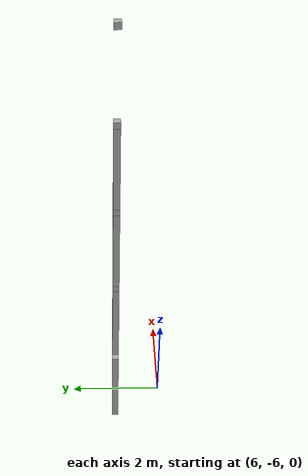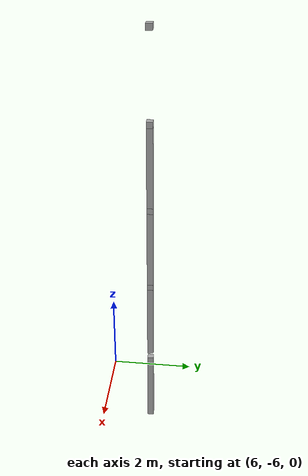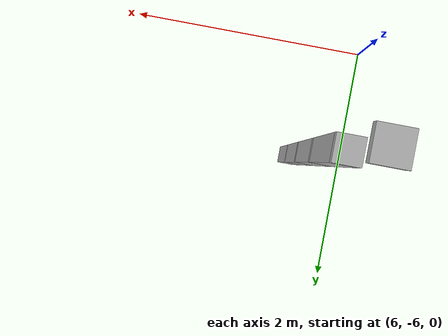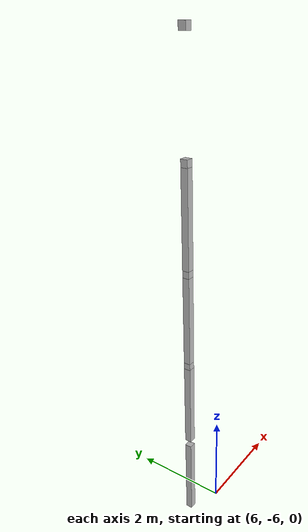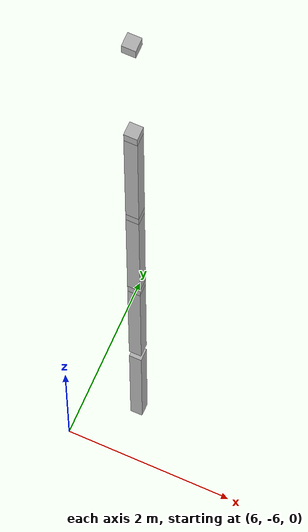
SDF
<sdf version="1.7">
 <world name="default">
  <model name="orthogonal_747_2.000.15_TS">
   <static>1</static>
   <link name="z_link_1_0_6">
    <inertial>
     <mass>1</mass>
     <inertia>
      <ixx>0.166667</ixx>
      <ixy>0</ixy>
      <ixz>0</ixz>
      <iyy>0.166667</iyy>
      <iyz>0</iyz>
      <izz>0.166667</izz>
     </inertia>
    </inertial>
    <pose>12.9 0 2.15 0 -0 0</pose>
    <visual name="visual_0">
     <laser_retro>939</laser_retro>
     <geometry><box><size>0.15 1e-06 2</size></box></geometry>
     <material>
      <script><name>Gazebo/Grey</name><uri>file://media/materials/scripts/gazebo.material</uri></script>
      <shader type="pixel"><normal_map>__default__</normal_map></shader>
      <ambient>0.678 0.498 0.659 1</ambient>
      <diffuse>0.7 0.7 0.7 1</diffuse>
      <specular>0.01 0.01 0.01 1</specular>
      <emissive>0 0 0 1</emissive>
     </material>
     <pose>0 -0.075 0 0 -0 0</pose>
     <transparency>1</transparency>
    </visual>
    <visual name="visual_1">
     <laser_retro>940</laser_retro>
     <geometry><box><size>0.15 1e-06 2</size></box></geometry>
     <material>
      <script><name>Gazebo/Grey</name><uri>file://media/materials/scripts/gazebo.material</uri></script>
      <shader type="pixel"><normal_map>__default__</normal_map></shader>
      <ambient>0.447 0.624 0.812 1</ambient>
      <diffuse>0.7 0.7 0.7 1</diffuse>
      <specular>0.01 0.01 0.01 1</specular>
      <emissive>0 0 0 1</emissive>
     </material>
     <pose>0 0.075 0 0 -0 0</pose>
     <transparency>1</transparency>
    </visual>
    <visual name="visual_2">
     <laser_retro>941</laser_retro>
     <geometry><box><size>0.15 0.15 1e-06</size></box></geometry>
     <material>
      <script><name>Gazebo/Grey</name><uri>file://media/materials/scripts/gazebo.material</uri></script>
      <shader type="pixel"><normal_map>__default__</normal_map></shader>
      <ambient>0.988 0.686 0.243 1</ambient>
      <diffuse>0.7 0.7 0.7 1</diffuse>
      <specular>0.01 0.01 0.01 1</specular>
      <emissive>0 0 0 1</emissive>
     </material>
     <pose>0 0 -1 0 -0 0</pose>
     <transparency>1</transparency>
    </visual>
    <visual name="visual_3">
     <laser_retro>942</laser_retro>
     <geometry><box><size>1e-06 0.15 2</size></box></geometry>
     <material>
      <script><name>Gazebo/Grey</name><uri>file://media/materials/scripts/gazebo.material</uri></script>
      <shader type="pixel"><normal_map>__default__</normal_map></shader>
      <ambient>0.988 0.914 0.31 1</ambient>
      <diffuse>0.7 0.7 0.7 1</diffuse>
      <specular>0.01 0.01 0.01 1</specular>
      <emissive>0 0 0 1</emissive>
     </material>
     <pose>0.075 0 0 0 -0 0</pose>
     <transparency>1</transparency>
    </visual>
    <visual name="visual_4">
     <laser_retro>943</laser_retro>
     <geometry><box><size>0.15 0.15 1e-06</size></box></geometry>
     <material>
      <script><name>Gazebo/Grey</name><uri>file://media/materials/scripts/gazebo.material</uri></script>
      <shader type="pixel"><normal_map>__default__</normal_map></shader>
      <ambient>0.937 0.161 0.161 1</ambient>
      <diffuse>0.7 0.7 0.7 1</diffuse>
      <specular>0.01 0.01 0.01 1</specular>
      <emissive>0 0 0 1</emissive>
     </material>
     <pose>0 0 1 0 -0 0</pose>
     <transparency>1</transparency>
    </visual>
    <visual name="visual_5">
     <laser_retro>944</laser_retro>
     <geometry><box><size>1e-06 0.15 2</size></box></geometry>
     <material>
      <script><name>Gazebo/Grey</name><uri>file://media/materials/scripts/gazebo.material</uri></script>
      <shader type="pixel"><normal_map>__default__</normal_map></shader>
      <ambient>0.541 0.886 0.204 1</ambient>
      <diffuse>0.7 0.7 0.7 1</diffuse>
      <specular>0.01 0.01 0.01 1</specular>
      <emissive>0 0 0 1</emissive>
     </material>
     <pose>-0.075 0 0 0 -0 0</pose>
     <transparency>1</transparency>
    </visual>
    <visual name="visual_texture">
     <geometry><box><size>0.149985 0.149985 1.9998</size></box></geometry>
     <material>
      <script>
       <uri>model://BASE_MODELS/simple_block_v2_textured/materials/scripts</uri>
       <uri>model://BASE_MODELS/simple_block_v2_textured/materials/textures</uri>
       <name>metal</name>
      </script>
     </material>
     <laser_retro>945</laser_retro>
    </visual>
    <collision name="collision">
     <geometry><box><size>0.15 0.15 2</size></box></geometry>
     <surface>
      <friction>
       <ode><mu>1</mu><mu2>1</mu2><fdir1>0 0 0</fdir1><slip1>0</slip1><slip2>0</slip2></ode>
       <torsional>
        <coefficient>1</coefficient>
        <patch_radius>0</patch_radius>
        <surface_radius>0</surface_radius>
        <use_patch_radius>1</use_patch_radius>
        <ode><slip>0</slip></ode>
       </torsional>
      </friction>
      <bounce><restitution_coefficient>0</restitution_coefficient><threshold>1e+06</threshold></bounce>
      <contact>
       <collide_without_contact>0</collide_without_contact>
       <collide_without_contact_bitmask>1</collide_without_contact_bitmask>
       <collide_bitmask>1</collide_bitmask>
       <ode>
        <soft_cfm>0</soft_cfm>
        <soft_erp>0.2</soft_erp>
        <kp>1e+13</kp>
        <kd>1</kd>
        <max_vel>0.01</max_vel>
        <min_depth>0</min_depth>
       </ode>
       <bullet>
        <split_impulse>1</split_impulse>
        <split_impulse_penetration_threshold>-0.01</split_impulse_penetration_threshold>
        <soft_cfm>0</soft_cfm>
        <soft_erp>0.2</soft_erp>
        <kp>1e+13</kp>
        <kd>1</kd>
       </bullet>
      </contact>
     </surface>
    </collision>
   </link>
   <link name="u_link_2_0_6">
    <inertial>
     <mass>1</mass>
     <inertia>
      <ixx>0.166667</ixx>
      <ixy>0</ixy>
      <ixz>0</ixz>
      <iyy>0.166667</iyy>
      <iyz>0</iyz>
      <izz>0.166667</izz>
     </inertia>
    </inertial>
    <pose>12.9 0 5.375 0 -0 0</pose>
    <visual name="visual_0">
     <laser_retro>1835</laser_retro>
     <geometry><box><size>0.15 1e-06 0.15</size></box></geometry>
     <material>
      <script><name>Gazebo/Grey</name><uri>file://media/materials/scripts/gazebo.material</uri></script>
      <shader type="pixel"><normal_map>__default__</normal_map></shader>
      <ambient>0.678 0.498 0.659 1</ambient>
      <diffuse>0.7 0.7 0.7 1</diffuse>
      <specular>0.01 0.01 0.01 1</specular>
      <emissive>0 0 0 1</emissive>
     </material>
     <pose>0 -0.075 0 0 -0 0</pose>
     <transparency>1</transparency>
    </visual>
    <visual name="visual_1">
     <laser_retro>1836</laser_retro>
     <geometry><box><size>0.15 1e-06 0.15</size></box></geometry>
     <material>
      <script><name>Gazebo/Grey</name><uri>file://media/materials/scripts/gazebo.material</uri></script>
      <shader type="pixel"><normal_map>__default__</normal_map></shader>
      <ambient>0.447 0.624 0.812 1</ambient>
      <diffuse>0.7 0.7 0.7 1</diffuse>
      <specular>0.01 0.01 0.01 1</specular>
      <emissive>0 0 0 1</emissive>
     </material>
     <pose>0 0.075 0 0 -0 0</pose>
     <transparency>1</transparency>
    </visual>
    <visual name="visual_2">
     <laser_retro>1837</laser_retro>
     <geometry><box><size>0.15 0.15 1e-06</size></box></geometry>
     <material>
      <script><name>Gazebo/Grey</name><uri>file://media/materials/scripts/gazebo.material</uri></script>
      <shader type="pixel"><normal_map>__default__</normal_map></shader>
      <ambient>0.988 0.686 0.243 1</ambient>
      <diffuse>0.7 0.7 0.7 1</diffuse>
      <specular>0.01 0.01 0.01 1</specular>
      <emissive>0 0 0 1</emissive>
     </material>
     <pose>0 0 -0.075 0 -0 0</pose>
     <transparency>1</transparency>
    </visual>
    <visual name="visual_3">
     <laser_retro>1838</laser_retro>
     <geometry><box><size>1e-06 0.15 0.15</size></box></geometry>
     <material>
      <script><name>Gazebo/Grey</name><uri>file://media/materials/scripts/gazebo.material</uri></script>
      <shader type="pixel"><normal_map>__default__</normal_map></shader>
      <ambient>0.988 0.914 0.31 1</ambient>
      <diffuse>0.7 0.7 0.7 1</diffuse>
      <specular>0.01 0.01 0.01 1</specular>
      <emissive>0 0 0 1</emissive>
     </material>
     <pose>0.075 0 0 0 -0 0</pose>
     <transparency>1</transparency>
    </visual>
    <visual name="visual_4">
     <laser_retro>1839</laser_retro>
     <geometry><box><size>0.15 0.15 1e-06</size></box></geometry>
     <material>
      <script><name>Gazebo/Grey</name><uri>file://media/materials/scripts/gazebo.material</uri></script>
      <shader type="pixel"><normal_map>__default__</normal_map></shader>
      <ambient>0.937 0.161 0.161 1</ambient>
      <diffuse>0.7 0.7 0.7 1</diffuse>
      <specular>0.01 0.01 0.01 1</specular>
      <emissive>0 0 0 1</emissive>
     </material>
     <pose>0 0 0.075 0 -0 0</pose>
     <transparency>1</transparency>
    </visual>
    <visual name="visual_5">
     <laser_retro>1840</laser_retro>
     <geometry><box><size>1e-06 0.15 0.15</size></box></geometry>
     <material>
      <script><name>Gazebo/Grey</name><uri>file://media/materials/scripts/gazebo.material</uri></script>
      <shader type="pixel"><normal_map>__default__</normal_map></shader>
      <ambient>0.541 0.886 0.204 1</ambient>
      <diffuse>0.7 0.7 0.7 1</diffuse>
      <specular>0.01 0.01 0.01 1</specular>
      <emissive>0 0 0 1</emissive>
     </material>
     <pose>-0.075 0 0 0 -0 0</pose>
     <transparency>1</transparency>
    </visual>
    <visual name="visual_texture">
     <geometry><box><size>0.149985 0.149985 0.149985</size></box></geometry>
     <material>
      <script>
       <uri>model://BASE_MODELS/simple_block_v2_textured/materials/scripts</uri>
       <uri>model://BASE_MODELS/simple_block_v2_textured/materials/textures</uri>
       <name>metal</name>
      </script>
     </material>
     <laser_retro>1841</laser_retro>
    </visual>
    <collision name="collision">
     <geometry><box><size>0.15 0.15 0.15</size></box></geometry>
     <surface>
      <friction>
       <ode><mu>1</mu><mu2>1</mu2><fdir1>0 0 0</fdir1><slip1>0</slip1><slip2>0</slip2></ode>
       <torsional>
        <coefficient>1</coefficient>
        <patch_radius>0</patch_radius>
        <surface_radius>0</surface_radius>
        <use_patch_radius>1</use_patch_radius>
        <ode><slip>0</slip></ode>
       </torsional>
      </friction>
      <bounce><restitution_coefficient>0</restitution_coefficient><threshold>1e+06</threshold></bounce>
      <contact>
       <collide_without_contact>0</collide_without_contact>
       <collide_without_contact_bitmask>1</collide_without_contact_bitmask>
       <collide_bitmask>1</collide_bitmask>
       <ode>
        <soft_cfm>0</soft_cfm>
        <soft_erp>0.2</soft_erp>
        <kp>1e+13</kp>
        <kd>1</kd>
        <max_vel>0.01</max_vel>
        <min_depth>0</min_depth>
       </ode>
       <bullet>
        <split_impulse>1</split_impulse>
        <split_impulse_penetration_threshold>-0.01</split_impulse_penetration_threshold>
        <soft_cfm>0</soft_cfm>
        <soft_erp>0.2</soft_erp>
        <kp>1e+13</kp>
        <kd>1</kd>
       </bullet>
      </contact>
     </surface>
    </collision>
   </link>
   <link name="z_link_2_0_6">
    <inertial>
     <mass>1</mass>
     <inertia>
      <ixx>0.166667</ixx>
      <ixy>0</ixy>
      <ixz>0</ixz>
      <iyy>0.166667</iyy>
      <iyz>0</iyz>
      <izz>0.166667</izz>
     </inertia>
    </inertial>
    <pose>12.9 0 4.3 0 -0 0</pose>
    <visual name="visual_0">
     <laser_retro>1842</laser_retro>
     <geometry><box><size>0.15 1e-06 2</size></box></geometry>
     <material>
      <script><name>Gazebo/Grey</name><uri>file://media/materials/scripts/gazebo.material</uri></script>
      <shader type="pixel"><normal_map>__default__</normal_map></shader>
      <ambient>0.678 0.498 0.659 1</ambient>
      <diffuse>0.7 0.7 0.7 1</diffuse>
      <specular>0.01 0.01 0.01 1</specular>
      <emissive>0 0 0 1</emissive>
     </material>
     <pose>0 -0.075 0 0 -0 0</pose>
     <transparency>1</transparency>
    </visual>
    <visual name="visual_1">
     <laser_retro>1843</laser_retro>
     <geometry><box><size>0.15 1e-06 2</size></box></geometry>
     <material>
      <script><name>Gazebo/Grey</name><uri>file://media/materials/scripts/gazebo.material</uri></script>
      <shader type="pixel"><normal_map>__default__</normal_map></shader>
      <ambient>0.447 0.624 0.812 1</ambient>
      <diffuse>0.7 0.7 0.7 1</diffuse>
      <specular>0.01 0.01 0.01 1</specular>
      <emissive>0 0 0 1</emissive>
     </material>
     <pose>0 0.075 0 0 -0 0</pose>
     <transparency>1</transparency>
    </visual>
    <visual name="visual_2">
     <laser_retro>1844</laser_retro>
     <geometry><box><size>0.15 0.15 1e-06</size></box></geometry>
     <material>
      <script><name>Gazebo/Grey</name><uri>file://media/materials/scripts/gazebo.material</uri></script>
      <shader type="pixel"><normal_map>__default__</normal_map></shader>
      <ambient>0.988 0.686 0.243 1</ambient>
      <diffuse>0.7 0.7 0.7 1</diffuse>
      <specular>0.01 0.01 0.01 1</specular>
      <emissive>0 0 0 1</emissive>
     </material>
     <pose>0 0 -1 0 -0 0</pose>
     <transparency>1</transparency>
    </visual>
    <visual name="visual_3">
     <laser_retro>1845</laser_retro>
     <geometry><box><size>1e-06 0.15 2</size></box></geometry>
     <material>
      <script><name>Gazebo/Grey</name><uri>file://media/materials/scripts/gazebo.material</uri></script>
      <shader type="pixel"><normal_map>__default__</normal_map></shader>
      <ambient>0.988 0.914 0.31 1</ambient>
      <diffuse>0.7 0.7 0.7 1</diffuse>
      <specular>0.01 0.01 0.01 1</specular>
      <emissive>0 0 0 1</emissive>
     </material>
     <pose>0.075 0 0 0 -0 0</pose>
     <transparency>1</transparency>
    </visual>
    <visual name="visual_4">
     <laser_retro>1846</laser_retro>
     <geometry><box><size>0.15 0.15 1e-06</size></box></geometry>
     <material>
      <script><name>Gazebo/Grey</name><uri>file://media/materials/scripts/gazebo.material</uri></script>
      <shader type="pixel"><normal_map>__default__</normal_map></shader>
      <ambient>0.937 0.161 0.161 1</ambient>
      <diffuse>0.7 0.7 0.7 1</diffuse>
      <specular>0.01 0.01 0.01 1</specular>
      <emissive>0 0 0 1</emissive>
     </material>
     <pose>0 0 1 0 -0 0</pose>
     <transparency>1</transparency>
    </visual>
    <visual name="visual_5">
     <laser_retro>1847</laser_retro>
     <geometry><box><size>1e-06 0.15 2</size></box></geometry>
     <material>
      <script><name>Gazebo/Grey</name><uri>file://media/materials/scripts/gazebo.material</uri></script>
      <shader type="pixel"><normal_map>__default__</normal_map></shader>
      <ambient>0.541 0.886 0.204 1</ambient>
      <diffuse>0.7 0.7 0.7 1</diffuse>
      <specular>0.01 0.01 0.01 1</specular>
      <emissive>0 0 0 1</emissive>
     </material>
     <pose>-0.075 0 0 0 -0 0</pose>
     <transparency>1</transparency>
    </visual>
    <visual name="visual_texture">
     <geometry><box><size>0.149985 0.149985 1.9998</size></box></geometry>
     <material>
      <script>
       <uri>model://BASE_MODELS/simple_block_v2_textured/materials/scripts</uri>
       <uri>model://BASE_MODELS/simple_block_v2_textured/materials/textures</uri>
       <name>metal</name>
      </script>
     </material>
     <laser_retro>1848</laser_retro>
    </visual>
    <collision name="collision">
     <geometry><box><size>0.15 0.15 2</size></box></geometry>
     <surface>
      <friction>
       <ode><mu>1</mu><mu2>1</mu2><fdir1>0 0 0</fdir1><slip1>0</slip1><slip2>0</slip2></ode>
       <torsional>
        <coefficient>1</coefficient>
        <patch_radius>0</patch_radius>
        <surface_radius>0</surface_radius>
        <use_patch_radius>1</use_patch_radius>
        <ode><slip>0</slip></ode>
       </torsional>
      </friction>
      <bounce><restitution_coefficient>0</restitution_coefficient><threshold>1e+06</threshold></bounce>
      <contact>
       <collide_without_contact>0</collide_without_contact>
       <collide_without_contact_bitmask>1</collide_without_contact_bitmask>
       <collide_bitmask>1</collide_bitmask>
       <ode>
        <soft_cfm>0</soft_cfm>
        <soft_erp>0.2</soft_erp>
        <kp>1e+13</kp>
        <kd>1</kd>
        <max_vel>0.01</max_vel>
        <min_depth>0</min_depth>
       </ode>
       <bullet>
        <split_impulse>1</split_impulse>
        <split_impulse_penetration_threshold>-0.01</split_impulse_penetration_threshold>
        <soft_cfm>0</soft_cfm>
        <soft_erp>0.2</soft_erp>
        <kp>1e+13</kp>
        <kd>1</kd>
       </bullet>
      </contact>
     </surface>
    </collision>
   </link>
   <link name="u_link_3_0_6">
    <inertial>
     <mass>1</mass>
     <inertia>
      <ixx>0.166667</ixx>
      <ixy>0</ixy>
      <ixz>0</ixz>
      <iyy>0.166667</iyy>
      <iyz>0</iyz>
      <izz>0.166667</izz>
     </inertia>
    </inertial>
    <pose>12.9 0 7.525 0 -0 0</pose>
    <visual name="visual_0">
     <laser_retro>2738</laser_retro>
     <geometry><box><size>0.15 1e-06 0.15</size></box></geometry>
     <material>
      <script><name>Gazebo/Grey</name><uri>file://media/materials/scripts/gazebo.material</uri></script>
      <shader type="pixel"><normal_map>__default__</normal_map></shader>
      <ambient>0.678 0.498 0.659 1</ambient>
      <diffuse>0.7 0.7 0.7 1</diffuse>
      <specular>0.01 0.01 0.01 1</specular>
      <emissive>0 0 0 1</emissive>
     </material>
     <pose>0 -0.075 0 0 -0 0</pose>
     <transparency>1</transparency>
    </visual>
    <visual name="visual_1">
     <laser_retro>2739</laser_retro>
     <geometry><box><size>0.15 1e-06 0.15</size></box></geometry>
     <material>
      <script><name>Gazebo/Grey</name><uri>file://media/materials/scripts/gazebo.material</uri></script>
      <shader type="pixel"><normal_map>__default__</normal_map></shader>
      <ambient>0.447 0.624 0.812 1</ambient>
      <diffuse>0.7 0.7 0.7 1</diffuse>
      <specular>0.01 0.01 0.01 1</specular>
      <emissive>0 0 0 1</emissive>
     </material>
     <pose>0 0.075 0 0 -0 0</pose>
     <transparency>1</transparency>
    </visual>
    <visual name="visual_2">
     <laser_retro>2740</laser_retro>
     <geometry><box><size>0.15 0.15 1e-06</size></box></geometry>
     <material>
      <script><name>Gazebo/Grey</name><uri>file://media/materials/scripts/gazebo.material</uri></script>
      <shader type="pixel"><normal_map>__default__</normal_map></shader>
      <ambient>0.988 0.686 0.243 1</ambient>
      <diffuse>0.7 0.7 0.7 1</diffuse>
      <specular>0.01 0.01 0.01 1</specular>
      <emissive>0 0 0 1</emissive>
     </material>
     <pose>0 0 -0.075 0 -0 0</pose>
     <transparency>1</transparency>
    </visual>
    <visual name="visual_3">
     <laser_retro>2741</laser_retro>
     <geometry><box><size>1e-06 0.15 0.15</size></box></geometry>
     <material>
      <script><name>Gazebo/Grey</name><uri>file://media/materials/scripts/gazebo.material</uri></script>
      <shader type="pixel"><normal_map>__default__</normal_map></shader>
      <ambient>0.988 0.914 0.31 1</ambient>
      <diffuse>0.7 0.7 0.7 1</diffuse>
      <specular>0.01 0.01 0.01 1</specular>
      <emissive>0 0 0 1</emissive>
     </material>
     <pose>0.075 0 0 0 -0 0</pose>
     <transparency>1</transparency>
    </visual>
    <visual name="visual_4">
     <laser_retro>2742</laser_retro>
     <geometry><box><size>0.15 0.15 1e-06</size></box></geometry>
     <material>
      <script><name>Gazebo/Grey</name><uri>file://media/materials/scripts/gazebo.material</uri></script>
      <shader type="pixel"><normal_map>__default__</normal_map></shader>
      <ambient>0.937 0.161 0.161 1</ambient>
      <diffuse>0.7 0.7 0.7 1</diffuse>
      <specular>0.01 0.01 0.01 1</specular>
      <emissive>0 0 0 1</emissive>
     </material>
     <pose>0 0 0.075 0 -0 0</pose>
     <transparency>1</transparency>
    </visual>
    <visual name="visual_5">
     <laser_retro>2743</laser_retro>
     <geometry><box><size>1e-06 0.15 0.15</size></box></geometry>
     <material>
      <script><name>Gazebo/Grey</name><uri>file://media/materials/scripts/gazebo.material</uri></script>
      <shader type="pixel"><normal_map>__default__</normal_map></shader>
      <ambient>0.541 0.886 0.204 1</ambient>
      <diffuse>0.7 0.7 0.7 1</diffuse>
      <specular>0.01 0.01 0.01 1</specular>
      <emissive>0 0 0 1</emissive>
     </material>
     <pose>-0.075 0 0 0 -0 0</pose>
     <transparency>1</transparency>
    </visual>
    <visual name="visual_texture">
     <geometry><box><size>0.149985 0.149985 0.149985</size></box></geometry>
     <material>
      <script>
       <uri>model://BASE_MODELS/simple_block_v2_textured/materials/scripts</uri>
       <uri>model://BASE_MODELS/simple_block_v2_textured/materials/textures</uri>
       <name>metal</name>
      </script>
     </material>
     <laser_retro>2744</laser_retro>
    </visual>
    <collision name="collision">
     <geometry><box><size>0.15 0.15 0.15</size></box></geometry>
     <surface>
      <friction>
       <ode><mu>1</mu><mu2>1</mu2><fdir1>0 0 0</fdir1><slip1>0</slip1><slip2>0</slip2></ode>
       <torsional>
        <coefficient>1</coefficient>
        <patch_radius>0</patch_radius>
        <surface_radius>0</surface_radius>
        <use_patch_radius>1</use_patch_radius>
        <ode><slip>0</slip></ode>
       </torsional>
      </friction>
      <bounce><restitution_coefficient>0</restitution_coefficient><threshold>1e+06</threshold></bounce>
      <contact>
       <collide_without_contact>0</collide_without_contact>
       <collide_without_contact_bitmask>1</collide_without_contact_bitmask>
       <collide_bitmask>1</collide_bitmask>
       <ode>
        <soft_cfm>0</soft_cfm>
        <soft_erp>0.2</soft_erp>
        <kp>1e+13</kp>
        <kd>1</kd>
        <max_vel>0.01</max_vel>
        <min_depth>0</min_depth>
       </ode>
       <bullet>
        <split_impulse>1</split_impulse>
        <split_impulse_penetration_threshold>-0.01</split_impulse_penetration_threshold>
        <soft_cfm>0</soft_cfm>
        <soft_erp>0.2</soft_erp>
        <kp>1e+13</kp>
        <kd>1</kd>
       </bullet>
      </contact>
     </surface>
    </collision>
   </link>
   <link name="z_link_3_0_6">
    <inertial>
     <mass>1</mass>
     <inertia>
      <ixx>0.166667</ixx>
      <ixy>0</ixy>
      <ixz>0</ixz>
      <iyy>0.166667</iyy>
      <iyz>0</iyz>
      <izz>0.166667</izz>
     </inertia>
    </inertial>
    <pose>12.9 0 6.45 0 -0 0</pose>
    <visual name="visual_0">
     <laser_retro>2745</laser_retro>
     <geometry><box><size>0.15 1e-06 2</size></box></geometry>
     <material>
      <script><name>Gazebo/Grey</name><uri>file://media/materials/scripts/gazebo.material</uri></script>
      <shader type="pixel"><normal_map>__default__</normal_map></shader>
      <ambient>0.678 0.498 0.659 1</ambient>
      <diffuse>0.7 0.7 0.7 1</diffuse>
      <specular>0.01 0.01 0.01 1</specular>
      <emissive>0 0 0 1</emissive>
     </material>
     <pose>0 -0.075 0 0 -0 0</pose>
     <transparency>1</transparency>
    </visual>
    <visual name="visual_1">
     <laser_retro>2746</laser_retro>
     <geometry><box><size>0.15 1e-06 2</size></box></geometry>
     <material>
      <script><name>Gazebo/Grey</name><uri>file://media/materials/scripts/gazebo.material</uri></script>
      <shader type="pixel"><normal_map>__default__</normal_map></shader>
      <ambient>0.447 0.624 0.812 1</ambient>
      <diffuse>0.7 0.7 0.7 1</diffuse>
      <specular>0.01 0.01 0.01 1</specular>
      <emissive>0 0 0 1</emissive>
     </material>
     <pose>0 0.075 0 0 -0 0</pose>
     <transparency>1</transparency>
    </visual>
    <visual name="visual_2">
     <laser_retro>2747</laser_retro>
     <geometry><box><size>0.15 0.15 1e-06</size></box></geometry>
     <material>
      <script><name>Gazebo/Grey</name><uri>file://media/materials/scripts/gazebo.material</uri></script>
      <shader type="pixel"><normal_map>__default__</normal_map></shader>
      <ambient>0.988 0.686 0.243 1</ambient>
      <diffuse>0.7 0.7 0.7 1</diffuse>
      <specular>0.01 0.01 0.01 1</specular>
      <emissive>0 0 0 1</emissive>
     </material>
     <pose>0 0 -1 0 -0 0</pose>
     <transparency>1</transparency>
    </visual>
    <visual name="visual_3">
     <laser_retro>2748</laser_retro>
     <geometry><box><size>1e-06 0.15 2</size></box></geometry>
     <material>
      <script><name>Gazebo/Grey</name><uri>file://media/materials/scripts/gazebo.material</uri></script>
      <shader type="pixel"><normal_map>__default__</normal_map></shader>
      <ambient>0.988 0.914 0.31 1</ambient>
      <diffuse>0.7 0.7 0.7 1</diffuse>
      <specular>0.01 0.01 0.01 1</specular>
      <emissive>0 0 0 1</emissive>
     </material>
     <pose>0.075 0 0 0 -0 0</pose>
     <transparency>1</transparency>
    </visual>
    <visual name="visual_4">
     <laser_retro>2749</laser_retro>
     <geometry><box><size>0.15 0.15 1e-06</size></box></geometry>
     <material>
      <script><name>Gazebo/Grey</name><uri>file://media/materials/scripts/gazebo.material</uri></script>
      <shader type="pixel"><normal_map>__default__</normal_map></shader>
      <ambient>0.937 0.161 0.161 1</ambient>
      <diffuse>0.7 0.7 0.7 1</diffuse>
      <specular>0.01 0.01 0.01 1</specular>
      <emissive>0 0 0 1</emissive>
     </material>
     <pose>0 0 1 0 -0 0</pose>
     <transparency>1</transparency>
    </visual>
    <visual name="visual_5">
     <laser_retro>2750</laser_retro>
     <geometry><box><size>1e-06 0.15 2</size></box></geometry>
     <material>
      <script><name>Gazebo/Grey</name><uri>file://media/materials/scripts/gazebo.material</uri></script>
      <shader type="pixel"><normal_map>__default__</normal_map></shader>
      <ambient>0.541 0.886 0.204 1</ambient>
      <diffuse>0.7 0.7 0.7 1</diffuse>
      <specular>0.01 0.01 0.01 1</specular>
      <emissive>0 0 0 1</emissive>
     </material>
     <pose>-0.075 0 0 0 -0 0</pose>
     <transparency>1</transparency>
    </visual>
    <visual name="visual_texture">
     <geometry><box><size>0.149985 0.149985 1.9998</size></box></geometry>
     <material>
      <script>
       <uri>model://BASE_MODELS/simple_block_v2_textured/materials/scripts</uri>
       <uri>model://BASE_MODELS/simple_block_v2_textured/materials/textures</uri>
       <name>metal</name>
      </script>
     </material>
     <laser_retro>2751</laser_retro>
    </visual>
    <collision name="collision">
     <geometry><box><size>0.15 0.15 2</size></box></geometry>
     <surface>
      <friction>
       <ode><mu>1</mu><mu2>1</mu2><fdir1>0 0 0</fdir1><slip1>0</slip1><slip2>0</slip2></ode>
       <torsional>
        <coefficient>1</coefficient>
        <patch_radius>0</patch_radius>
        <surface_radius>0</surface_radius>
        <use_patch_radius>1</use_patch_radius>
        <ode><slip>0</slip></ode>
       </torsional>
      </friction>
      <bounce><restitution_coefficient>0</restitution_coefficient><threshold>1e+06</threshold></bounce>
      <contact>
       <collide_without_contact>0</collide_without_contact>
       <collide_without_contact_bitmask>1</collide_without_contact_bitmask>
       <collide_bitmask>1</collide_bitmask>
       <ode>
        <soft_cfm>0</soft_cfm>
        <soft_erp>0.2</soft_erp>
        <kp>1e+13</kp>
        <kd>1</kd>
        <max_vel>0.01</max_vel>
        <min_depth>0</min_depth>
       </ode>
       <bullet>
        <split_impulse>1</split_impulse>
        <split_impulse_penetration_threshold>-0.01</split_impulse_penetration_threshold>
        <soft_cfm>0</soft_cfm>
        <soft_erp>0.2</soft_erp>
        <kp>1e+13</kp>
        <kd>1</kd>
       </bullet>
      </contact>
     </surface>
    </collision>
   </link>
   <link name="u_link_4_0_6">
    <inertial>
     <mass>1</mass>
     <inertia>
      <ixx>0.166667</ixx>
      <ixy>0</ixy>
      <ixz>0</ixz>
      <iyy>0.166667</iyy>
      <iyz>0</iyz>
      <izz>0.166667</izz>
     </inertia>
    </inertial>
    <pose>12.9 0 9.675 0 -0 0</pose>
    <visual name="visual_0">
     <laser_retro>3641</laser_retro>
     <geometry><box><size>0.15 1e-06 0.15</size></box></geometry>
     <material>
      <script><name>Gazebo/Grey</name><uri>file://media/materials/scripts/gazebo.material</uri></script>
      <shader type="pixel"><normal_map>__default__</normal_map></shader>
      <ambient>0.678 0.498 0.659 1</ambient>
      <diffuse>0.7 0.7 0.7 1</diffuse>
      <specular>0.01 0.01 0.01 1</specular>
      <emissive>0 0 0 1</emissive>
     </material>
     <pose>0 -0.075 0 0 -0 0</pose>
     <transparency>1</transparency>
    </visual>
    <visual name="visual_1">
     <laser_retro>3642</laser_retro>
     <geometry><box><size>0.15 1e-06 0.15</size></box></geometry>
     <material>
      <script><name>Gazebo/Grey</name><uri>file://media/materials/scripts/gazebo.material</uri></script>
      <shader type="pixel"><normal_map>__default__</normal_map></shader>
      <ambient>0.447 0.624 0.812 1</ambient>
      <diffuse>0.7 0.7 0.7 1</diffuse>
      <specular>0.01 0.01 0.01 1</specular>
      <emissive>0 0 0 1</emissive>
     </material>
     <pose>0 0.075 0 0 -0 0</pose>
     <transparency>1</transparency>
    </visual>
    <visual name="visual_2">
     <laser_retro>3643</laser_retro>
     <geometry><box><size>0.15 0.15 1e-06</size></box></geometry>
     <material>
      <script><name>Gazebo/Grey</name><uri>file://media/materials/scripts/gazebo.material</uri></script>
      <shader type="pixel"><normal_map>__default__</normal_map></shader>
      <ambient>0.988 0.686 0.243 1</ambient>
      <diffuse>0.7 0.7 0.7 1</diffuse>
      <specular>0.01 0.01 0.01 1</specular>
      <emissive>0 0 0 1</emissive>
     </material>
     <pose>0 0 -0.075 0 -0 0</pose>
     <transparency>1</transparency>
    </visual>
    <visual name="visual_3">
     <laser_retro>3644</laser_retro>
     <geometry><box><size>1e-06 0.15 0.15</size></box></geometry>
     <material>
      <script><name>Gazebo/Grey</name><uri>file://media/materials/scripts/gazebo.material</uri></script>
      <shader type="pixel"><normal_map>__default__</normal_map></shader>
      <ambient>0.988 0.914 0.31 1</ambient>
      <diffuse>0.7 0.7 0.7 1</diffuse>
      <specular>0.01 0.01 0.01 1</specular>
      <emissive>0 0 0 1</emissive>
     </material>
     <pose>0.075 0 0 0 -0 0</pose>
     <transparency>1</transparency>
    </visual>
    <visual name="visual_4">
     <laser_retro>3645</laser_retro>
     <geometry><box><size>0.15 0.15 1e-06</size></box></geometry>
     <material>
      <script><name>Gazebo/Grey</name><uri>file://media/materials/scripts/gazebo.material</uri></script>
      <shader type="pixel"><normal_map>__default__</normal_map></shader>
      <ambient>0.937 0.161 0.161 1</ambient>
      <diffuse>0.7 0.7 0.7 1</diffuse>
      <specular>0.01 0.01 0.01 1</specular>
      <emissive>0 0 0 1</emissive>
     </material>
     <pose>0 0 0.075 0 -0 0</pose>
     <transparency>1</transparency>
    </visual>
    <visual name="visual_5">
     <laser_retro>3646</laser_retro>
     <geometry><box><size>1e-06 0.15 0.15</size></box></geometry>
     <material>
      <script><name>Gazebo/Grey</name><uri>file://media/materials/scripts/gazebo.material</uri></script>
      <shader type="pixel"><normal_map>__default__</normal_map></shader>
      <ambient>0.541 0.886 0.204 1</ambient>
      <diffuse>0.7 0.7 0.7 1</diffuse>
      <specular>0.01 0.01 0.01 1</specular>
      <emissive>0 0 0 1</emissive>
     </material>
     <pose>-0.075 0 0 0 -0 0</pose>
     <transparency>1</transparency>
    </visual>
    <visual name="visual_texture">
     <geometry><box><size>0.149985 0.149985 0.149985</size></box></geometry>
     <material>
      <script>
       <uri>model://BASE_MODELS/simple_block_v2_textured/materials/scripts</uri>
       <uri>model://BASE_MODELS/simple_block_v2_textured/materials/textures</uri>
       <name>metal</name>
      </script>
     </material>
     <laser_retro>3647</laser_retro>
    </visual>
    <collision name="collision">
     <geometry><box><size>0.15 0.15 0.15</size></box></geometry>
     <surface>
      <friction>
       <ode><mu>1</mu><mu2>1</mu2><fdir1>0 0 0</fdir1><slip1>0</slip1><slip2>0</slip2></ode>
       <torsional>
        <coefficient>1</coefficient>
        <patch_radius>0</patch_radius>
        <surface_radius>0</surface_radius>
        <use_patch_radius>1</use_patch_radius>
        <ode><slip>0</slip></ode>
       </torsional>
      </friction>
      <bounce><restitution_coefficient>0</restitution_coefficient><threshold>1e+06</threshold></bounce>
      <contact>
       <collide_without_contact>0</collide_without_contact>
       <collide_without_contact_bitmask>1</collide_without_contact_bitmask>
       <collide_bitmask>1</collide_bitmask>
       <ode>
        <soft_cfm>0</soft_cfm>
        <soft_erp>0.2</soft_erp>
        <kp>1e+13</kp>
        <kd>1</kd>
        <max_vel>0.01</max_vel>
        <min_depth>0</min_depth>
       </ode>
       <bullet>
        <split_impulse>1</split_impulse>
        <split_impulse_penetration_threshold>-0.01</split_impulse_penetration_threshold>
        <soft_cfm>0</soft_cfm>
        <soft_erp>0.2</soft_erp>
        <kp>1e+13</kp>
        <kd>1</kd>
       </bullet>
      </contact>
     </surface>
    </collision>
   </link>
   <link name="z_link_4_0_6">
    <inertial>
     <mass>1</mass>
     <inertia>
      <ixx>0.166667</ixx>
      <ixy>0</ixy>
      <ixz>0</ixz>
      <iyy>0.166667</iyy>
      <iyz>0</iyz>
      <izz>0.166667</izz>
     </inertia>
    </inertial>
    <pose>12.9 0 8.6 0 -0 0</pose>
    <visual name="visual_0">
     <laser_retro>3648</laser_retro>
     <geometry><box><size>0.15 1e-06 2</size></box></geometry>
     <material>
      <script><name>Gazebo/Grey</name><uri>file://media/materials/scripts/gazebo.material</uri></script>
      <shader type="pixel"><normal_map>__default__</normal_map></shader>
      <ambient>0.678 0.498 0.659 1</ambient>
      <diffuse>0.7 0.7 0.7 1</diffuse>
      <specular>0.01 0.01 0.01 1</specular>
      <emissive>0 0 0 1</emissive>
     </material>
     <pose>0 -0.075 0 0 -0 0</pose>
     <transparency>1</transparency>
    </visual>
    <visual name="visual_1">
     <laser_retro>3649</laser_retro>
     <geometry><box><size>0.15 1e-06 2</size></box></geometry>
     <material>
      <script><name>Gazebo/Grey</name><uri>file://media/materials/scripts/gazebo.material</uri></script>
      <shader type="pixel"><normal_map>__default__</normal_map></shader>
      <ambient>0.447 0.624 0.812 1</ambient>
      <diffuse>0.7 0.7 0.7 1</diffuse>
      <specular>0.01 0.01 0.01 1</specular>
      <emissive>0 0 0 1</emissive>
     </material>
     <pose>0 0.075 0 0 -0 0</pose>
     <transparency>1</transparency>
    </visual>
    <visual name="visual_2">
     <laser_retro>3650</laser_retro>
     <geometry><box><size>0.15 0.15 1e-06</size></box></geometry>
     <material>
      <script><name>Gazebo/Grey</name><uri>file://media/materials/scripts/gazebo.material</uri></script>
      <shader type="pixel"><normal_map>__default__</normal_map></shader>
      <ambient>0.988 0.686 0.243 1</ambient>
      <diffuse>0.7 0.7 0.7 1</diffuse>
      <specular>0.01 0.01 0.01 1</specular>
      <emissive>0 0 0 1</emissive>
     </material>
     <pose>0 0 -1 0 -0 0</pose>
     <transparency>1</transparency>
    </visual>
    <visual name="visual_3">
     <laser_retro>3651</laser_retro>
     <geometry><box><size>1e-06 0.15 2</size></box></geometry>
     <material>
      <script><name>Gazebo/Grey</name><uri>file://media/materials/scripts/gazebo.material</uri></script>
      <shader type="pixel"><normal_map>__default__</normal_map></shader>
      <ambient>0.988 0.914 0.31 1</ambient>
      <diffuse>0.7 0.7 0.7 1</diffuse>
      <specular>0.01 0.01 0.01 1</specular>
      <emissive>0 0 0 1</emissive>
     </material>
     <pose>0.075 0 0 0 -0 0</pose>
     <transparency>1</transparency>
    </visual>
    <visual name="visual_4">
     <laser_retro>3652</laser_retro>
     <geometry><box><size>0.15 0.15 1e-06</size></box></geometry>
     <material>
      <script><name>Gazebo/Grey</name><uri>file://media/materials/scripts/gazebo.material</uri></script>
      <shader type="pixel"><normal_map>__default__</normal_map></shader>
      <ambient>0.937 0.161 0.161 1</ambient>
      <diffuse>0.7 0.7 0.7 1</diffuse>
      <specular>0.01 0.01 0.01 1</specular>
      <emissive>0 0 0 1</emissive>
     </material>
     <pose>0 0 1 0 -0 0</pose>
     <transparency>1</transparency>
    </visual>
    <visual name="visual_5">
     <laser_retro>3653</laser_retro>
     <geometry><box><size>1e-06 0.15 2</size></box></geometry>
     <material>
      <script><name>Gazebo/Grey</name><uri>file://media/materials/scripts/gazebo.material</uri></script>
      <shader type="pixel"><normal_map>__default__</normal_map></shader>
      <ambient>0.541 0.886 0.204 1</ambient>
      <diffuse>0.7 0.7 0.7 1</diffuse>
      <specular>0.01 0.01 0.01 1</specular>
      <emissive>0 0 0 1</emissive>
     </material>
     <pose>-0.075 0 0 0 -0 0</pose>
     <transparency>1</transparency>
    </visual>
    <visual name="visual_texture">
     <geometry><box><size>0.149985 0.149985 1.9998</size></box></geometry>
     <material>
      <script>
       <uri>model://BASE_MODELS/simple_block_v2_textured/materials/scripts</uri>
       <uri>model://BASE_MODELS/simple_block_v2_textured/materials/textures</uri>
       <name>metal</name>
      </script>
     </material>
     <laser_retro>3654</laser_retro>
    </visual>
    <collision name="collision">
     <geometry><box><size>0.15 0.15 2</size></box></geometry>
     <surface>
      <friction>
       <ode><mu>1</mu><mu2>1</mu2><fdir1>0 0 0</fdir1><slip1>0</slip1><slip2>0</slip2></ode>
       <torsional>
        <coefficient>1</coefficient>
        <patch_radius>0</patch_radius>
        <surface_radius>0</surface_radius>
        <use_patch_radius>1</use_patch_radius>
        <ode><slip>0</slip></ode>
       </torsional>
      </friction>
      <bounce><restitution_coefficient>0</restitution_coefficient><threshold>1e+06</threshold></bounce>
      <contact>
       <collide_without_contact>0</collide_without_contact>
       <collide_without_contact_bitmask>1</collide_without_contact_bitmask>
       <collide_bitmask>1</collide_bitmask>
       <ode>
        <soft_cfm>0</soft_cfm>
        <soft_erp>0.2</soft_erp>
        <kp>1e+13</kp>
        <kd>1</kd>
        <max_vel>0.01</max_vel>
        <min_depth>0</min_depth>
       </ode>
       <bullet>
        <split_impulse>1</split_impulse>
        <split_impulse_penetration_threshold>-0.01</split_impulse_penetration_threshold>
        <soft_cfm>0</soft_cfm>
        <soft_erp>0.2</soft_erp>
        <kp>1e+13</kp>
        <kd>1</kd>
       </bullet>
      </contact>
     </surface>
    </collision>
   </link>
   <link name="u_link_5_0_6">
    <inertial>
     <mass>1</mass>
     <inertia>
      <ixx>0.166667</ixx>
      <ixy>0</ixy>
      <ixz>0</ixz>
      <iyy>0.166667</iyy>
      <iyz>0</iyz>
      <izz>0.166667</izz>
     </inertia>
    </inertial>
    <pose>12.9 0 11.825 0 -0 0</pose>
    <visual name="visual_0">
     <laser_retro>4544</laser_retro>
     <geometry><box><size>0.15 1e-06 0.15</size></box></geometry>
     <material>
      <script><name>Gazebo/Grey</name><uri>file://media/materials/scripts/gazebo.material</uri></script>
      <shader type="pixel"><normal_map>__default__</normal_map></shader>
      <ambient>0.678 0.498 0.659 1</ambient>
      <diffuse>0.7 0.7 0.7 1</diffuse>
      <specular>0.01 0.01 0.01 1</specular>
      <emissive>0 0 0 1</emissive>
     </material>
     <pose>0 -0.075 0 0 -0 0</pose>
     <transparency>1</transparency>
    </visual>
    <visual name="visual_1">
     <laser_retro>4545</laser_retro>
     <geometry><box><size>0.15 1e-06 0.15</size></box></geometry>
     <material>
      <script><name>Gazebo/Grey</name><uri>file://media/materials/scripts/gazebo.material</uri></script>
      <shader type="pixel"><normal_map>__default__</normal_map></shader>
      <ambient>0.447 0.624 0.812 1</ambient>
      <diffuse>0.7 0.7 0.7 1</diffuse>
      <specular>0.01 0.01 0.01 1</specular>
      <emissive>0 0 0 1</emissive>
     </material>
     <pose>0 0.075 0 0 -0 0</pose>
     <transparency>1</transparency>
    </visual>
    <visual name="visual_2">
     <laser_retro>4546</laser_retro>
     <geometry><box><size>0.15 0.15 1e-06</size></box></geometry>
     <material>
      <script><name>Gazebo/Grey</name><uri>file://media/materials/scripts/gazebo.material</uri></script>
      <shader type="pixel"><normal_map>__default__</normal_map></shader>
      <ambient>0.988 0.686 0.243 1</ambient>
      <diffuse>0.7 0.7 0.7 1</diffuse>
      <specular>0.01 0.01 0.01 1</specular>
      <emissive>0 0 0 1</emissive>
     </material>
     <pose>0 0 -0.075 0 -0 0</pose>
     <transparency>1</transparency>
    </visual>
    <visual name="visual_3">
     <laser_retro>4547</laser_retro>
     <geometry><box><size>1e-06 0.15 0.15</size></box></geometry>
     <material>
      <script><name>Gazebo/Grey</name><uri>file://media/materials/scripts/gazebo.material</uri></script>
      <shader type="pixel"><normal_map>__default__</normal_map></shader>
      <ambient>0.988 0.914 0.31 1</ambient>
      <diffuse>0.7 0.7 0.7 1</diffuse>
      <specular>0.01 0.01 0.01 1</specular>
      <emissive>0 0 0 1</emissive>
     </material>
     <pose>0.075 0 0 0 -0 0</pose>
     <transparency>1</transparency>
    </visual>
    <visual name="visual_4">
     <laser_retro>4548</laser_retro>
     <geometry><box><size>0.15 0.15 1e-06</size></box></geometry>
     <material>
      <script><name>Gazebo/Grey</name><uri>file://media/materials/scripts/gazebo.material</uri></script>
      <shader type="pixel"><normal_map>__default__</normal_map></shader>
      <ambient>0.937 0.161 0.161 1</ambient>
      <diffuse>0.7 0.7 0.7 1</diffuse>
      <specular>0.01 0.01 0.01 1</specular>
      <emissive>0 0 0 1</emissive>
     </material>
     <pose>0 0 0.075 0 -0 0</pose>
     <transparency>1</transparency>
    </visual>
    <visual name="visual_5">
     <laser_retro>4549</laser_retro>
     <geometry><box><size>1e-06 0.15 0.15</size></box></geometry>
     <material>
      <script><name>Gazebo/Grey</name><uri>file://media/materials/scripts/gazebo.material</uri></script>
      <shader type="pixel"><normal_map>__default__</normal_map></shader>
      <ambient>0.541 0.886 0.204 1</ambient>
      <diffuse>0.7 0.7 0.7 1</diffuse>
      <specular>0.01 0.01 0.01 1</specular>
      <emissive>0 0 0 1</emissive>
     </material>
     <pose>-0.075 0 0 0 -0 0</pose>
     <transparency>1</transparency>
    </visual>
    <visual name="visual_texture">
     <geometry><box><size>0.149985 0.149985 0.149985</size></box></geometry>
     <material>
      <script>
       <uri>model://BASE_MODELS/simple_block_v2_textured/materials/scripts</uri>
       <uri>model://BASE_MODELS/simple_block_v2_textured/materials/textures</uri>
       <name>metal</name>
      </script>
     </material>
     <laser_retro>4550</laser_retro>
    </visual>
    <collision name="collision">
     <geometry><box><size>0.15 0.15 0.15</size></box></geometry>
     <surface>
      <friction>
       <ode><mu>1</mu><mu2>1</mu2><fdir1>0 0 0</fdir1><slip1>0</slip1><slip2>0</slip2></ode>
       <torsional>
        <coefficient>1</coefficient>
        <patch_radius>0</patch_radius>
        <surface_radius>0</surface_radius>
        <use_patch_radius>1</use_patch_radius>
        <ode><slip>0</slip></ode>
       </torsional>
      </friction>
      <bounce><restitution_coefficient>0</restitution_coefficient><threshold>1e+06</threshold></bounce>
      <contact>
       <collide_without_contact>0</collide_without_contact>
       <collide_without_contact_bitmask>1</collide_without_contact_bitmask>
       <collide_bitmask>1</collide_bitmask>
       <ode>
        <soft_cfm>0</soft_cfm>
        <soft_erp>0.2</soft_erp>
        <kp>1e+13</kp>
        <kd>1</kd>
        <max_vel>0.01</max_vel>
        <min_depth>0</min_depth>
       </ode>
       <bullet>
        <split_impulse>1</split_impulse>
        <split_impulse_penetration_threshold>-0.01</split_impulse_penetration_threshold>
        <soft_cfm>0</soft_cfm>
        <soft_erp>0.2</soft_erp>
        <kp>1e+13</kp>
        <kd>1</kd>
       </bullet>
      </contact>
     </surface>
    </collision>
   </link>
   <pose>-6.47624 -5 -2.5 0 -0 0</pose>
  </model>
 </world>
</sdf>
